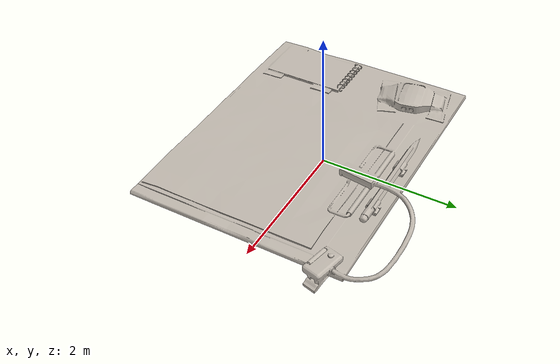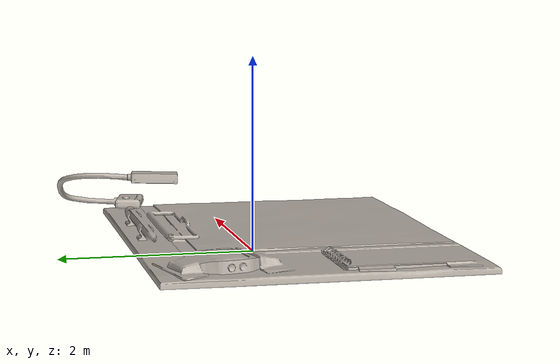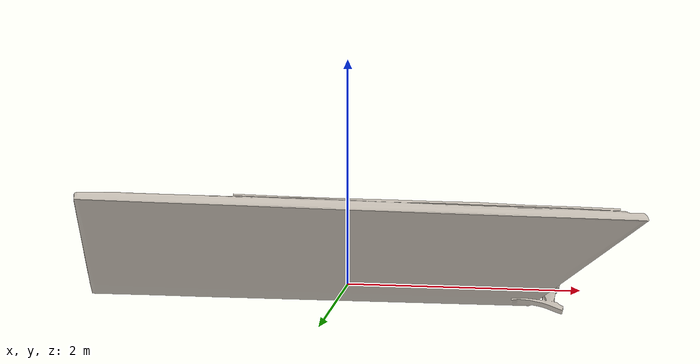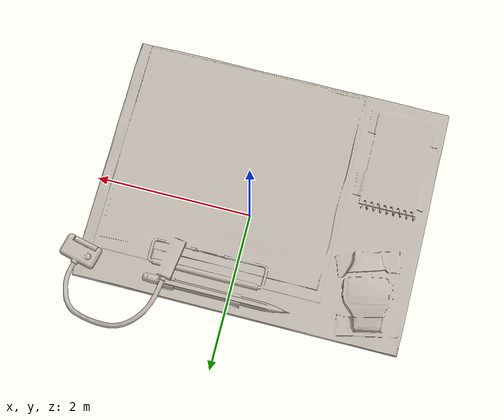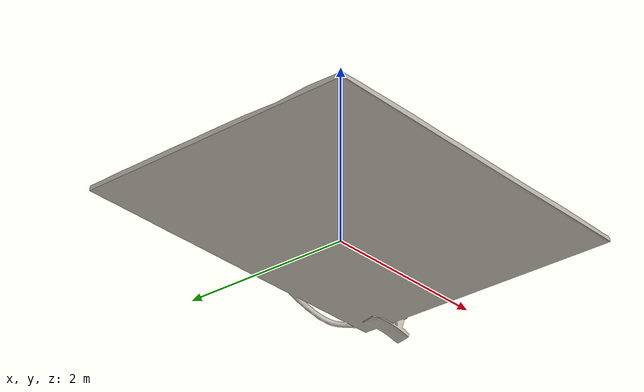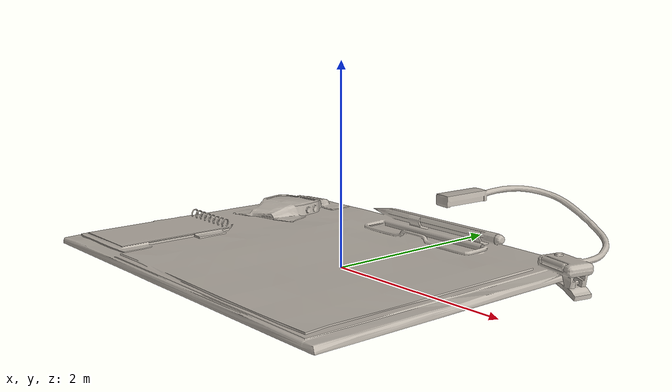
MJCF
<?xml version="1.0" ?>
<mujoco model="8724cdb3e4e94242bcb94ad3868765dc">
  <asset>
    <texture type="2d" name="material_0" file="material_0.png"/>
    <material name="material_0" texture="material_0" specular="0.4000000000000001" shininess="0.001"/>
    <mesh file="8724cdb3e4e94242bcb94ad3868765dc/8724cdb3e4e94242bcb94ad3868765dc.obj" scale="7.280620347683598 7.280620347683598 7.280620347683598"/>
    <mesh file="8724cdb3e4e94242bcb94ad3868765dc/8724cdb3e4e94242bcb94ad3868765dc_collision_0.obj" scale="7.280620347683598 7.280620347683598 7.280620347683598"/>
    <mesh file="8724cdb3e4e94242bcb94ad3868765dc/8724cdb3e4e94242bcb94ad3868765dc_collision_1.obj" scale="7.280620347683598 7.280620347683598 7.280620347683598"/>
    <mesh file="8724cdb3e4e94242bcb94ad3868765dc/8724cdb3e4e94242bcb94ad3868765dc_collision_2.obj" scale="7.280620347683598 7.280620347683598 7.280620347683598"/>
    <mesh file="8724cdb3e4e94242bcb94ad3868765dc/8724cdb3e4e94242bcb94ad3868765dc_collision_3.obj" scale="7.280620347683598 7.280620347683598 7.280620347683598"/>
    <mesh file="8724cdb3e4e94242bcb94ad3868765dc/8724cdb3e4e94242bcb94ad3868765dc_collision_4.obj" scale="7.280620347683598 7.280620347683598 7.280620347683598"/>
    <mesh file="8724cdb3e4e94242bcb94ad3868765dc/8724cdb3e4e94242bcb94ad3868765dc_collision_5.obj" scale="7.280620347683598 7.280620347683598 7.280620347683598"/>
    <mesh file="8724cdb3e4e94242bcb94ad3868765dc/8724cdb3e4e94242bcb94ad3868765dc_collision_6.obj" scale="7.280620347683598 7.280620347683598 7.280620347683598"/>
    <mesh file="8724cdb3e4e94242bcb94ad3868765dc/8724cdb3e4e94242bcb94ad3868765dc_collision_7.obj" scale="7.280620347683598 7.280620347683598 7.280620347683598"/>
    <mesh file="8724cdb3e4e94242bcb94ad3868765dc/8724cdb3e4e94242bcb94ad3868765dc_collision_8.obj" scale="7.280620347683598 7.280620347683598 7.280620347683598"/>
    <mesh file="8724cdb3e4e94242bcb94ad3868765dc/8724cdb3e4e94242bcb94ad3868765dc_collision_9.obj" scale="7.280620347683598 7.280620347683598 7.280620347683598"/>
    <mesh file="8724cdb3e4e94242bcb94ad3868765dc/8724cdb3e4e94242bcb94ad3868765dc_collision_10.obj" scale="7.280620347683598 7.280620347683598 7.280620347683598"/>
    <mesh file="8724cdb3e4e94242bcb94ad3868765dc/8724cdb3e4e94242bcb94ad3868765dc_collision_11.obj" scale="7.280620347683598 7.280620347683598 7.280620347683598"/>
    <mesh file="8724cdb3e4e94242bcb94ad3868765dc/8724cdb3e4e94242bcb94ad3868765dc_collision_12.obj" scale="7.280620347683598 7.280620347683598 7.280620347683598"/>
    <mesh file="8724cdb3e4e94242bcb94ad3868765dc/8724cdb3e4e94242bcb94ad3868765dc_collision_13.obj" scale="7.280620347683598 7.280620347683598 7.280620347683598"/>
    <mesh file="8724cdb3e4e94242bcb94ad3868765dc/8724cdb3e4e94242bcb94ad3868765dc_collision_14.obj" scale="7.280620347683598 7.280620347683598 7.280620347683598"/>
    <mesh file="8724cdb3e4e94242bcb94ad3868765dc/8724cdb3e4e94242bcb94ad3868765dc_collision_15.obj" scale="7.280620347683598 7.280620347683598 7.280620347683598"/>
    <mesh file="8724cdb3e4e94242bcb94ad3868765dc/8724cdb3e4e94242bcb94ad3868765dc_collision_16.obj" scale="7.280620347683598 7.280620347683598 7.280620347683598"/>
  </asset>
  <worldbody>
    <body name="8724cdb3e4e94242bcb94ad3868765dc">
      <inertial pos="0 0 0.3750" mass="0.02" diaginertia="0.024205 0.032013 0.054344"/>
      <geom material="material_0" mesh="8724cdb3e4e94242bcb94ad3868765dc" class="visual"/>
      <geom mesh="8724cdb3e4e94242bcb94ad3868765dc_collision_0" rgba="0.492255743473454 0.7192401476110499 0.38942118806428117 1" class="collision"/>
      <geom mesh="8724cdb3e4e94242bcb94ad3868765dc_collision_1" rgba="0.7374613620269083 0.7814695539655045 0.6268325958215073 1" class="collision"/>
      <geom mesh="8724cdb3e4e94242bcb94ad3868765dc_collision_2" rgba="0.9023081279028173 0.00013010760653797693 0.10206866904759948 1" class="collision"/>
      <geom mesh="8724cdb3e4e94242bcb94ad3868765dc_collision_3" rgba="0.2629622859857449 0.5257349076239215 0.15738751401764595 1" class="collision"/>
      <geom mesh="8724cdb3e4e94242bcb94ad3868765dc_collision_4" rgba="0.21436938876670197 0.27672555713736224 0.25710687756906914 1" class="collision"/>
      <geom mesh="8724cdb3e4e94242bcb94ad3868765dc_collision_5" rgba="0.921615753746091 0.21967971112287699 0.19419968731894233 1" class="collision"/>
      <geom mesh="8724cdb3e4e94242bcb94ad3868765dc_collision_6" rgba="0.5265888803032074 0.5734581046244586 0.5971315936486359 1" class="collision"/>
      <geom mesh="8724cdb3e4e94242bcb94ad3868765dc_collision_7" rgba="0.8064025212213802 0.11768233852613907 0.9636892599634861 1" class="collision"/>
      <geom mesh="8724cdb3e4e94242bcb94ad3868765dc_collision_8" rgba="0.3031755491557323 0.013961594965211765 0.5165085634507492 1" class="collision"/>
      <geom mesh="8724cdb3e4e94242bcb94ad3868765dc_collision_9" rgba="0.26691879503185356 0.14420058703761274 0.7993523549053856 1" class="collision"/>
      <geom mesh="8724cdb3e4e94242bcb94ad3868765dc_collision_10" rgba="0.9078603710875616 0.6507589818788078 0.16770516943891223 1" class="collision"/>
      <geom mesh="8724cdb3e4e94242bcb94ad3868765dc_collision_11" rgba="0.15222007296525664 0.4638237497308273 0.4221030777051876 1" class="collision"/>
      <geom mesh="8724cdb3e4e94242bcb94ad3868765dc_collision_12" rgba="0.6508699446544698 0.6008031740941372 0.5633794951032115 1" class="collision"/>
      <geom mesh="8724cdb3e4e94242bcb94ad3868765dc_collision_13" rgba="0.7319390757966383 0.7971913107965266 0.2645420000589028 1" class="collision"/>
      <geom mesh="8724cdb3e4e94242bcb94ad3868765dc_collision_14" rgba="0.1274775452358704 0.6731067641241129 0.06259078840337196 1" class="collision"/>
      <geom mesh="8724cdb3e4e94242bcb94ad3868765dc_collision_15" rgba="0.28348236295022 0.9783206720535546 0.5138545575763974 1" class="collision"/>
      <geom mesh="8724cdb3e4e94242bcb94ad3868765dc_collision_16" rgba="0.3000324528112861 0.7937706920187547 0.23022890047645717 1" class="collision"/>
      <site class="grasppoint" pos="0 0 0.6000"/>
      <site class="grasppoint" pos="0 0 0.6562"/>
      <site class="grasppoint" pos="0 0 0.7125"/>
    </body>
  </worldbody>
  <compiler boundmass="0.015" boundinertia="1e-05" angle="radian"/>
  <default>
    <default class="visual">
      <geom group="2" type="mesh" contype="0" conaffinity="0" density="50"/>
    </default>
    <default class="collision">
      <geom group="3" type="mesh" density="50" friction="1.5 0.1 0.1" solimp="0.9 0.95 0.001" solref="0.02 1"/>
    </default>
    <default class="grasppoint">
      <site type="sphere" size="0.005" group="4" rgba="0 0 1 1"/>
    </default>
  </default>
</mujoco>
